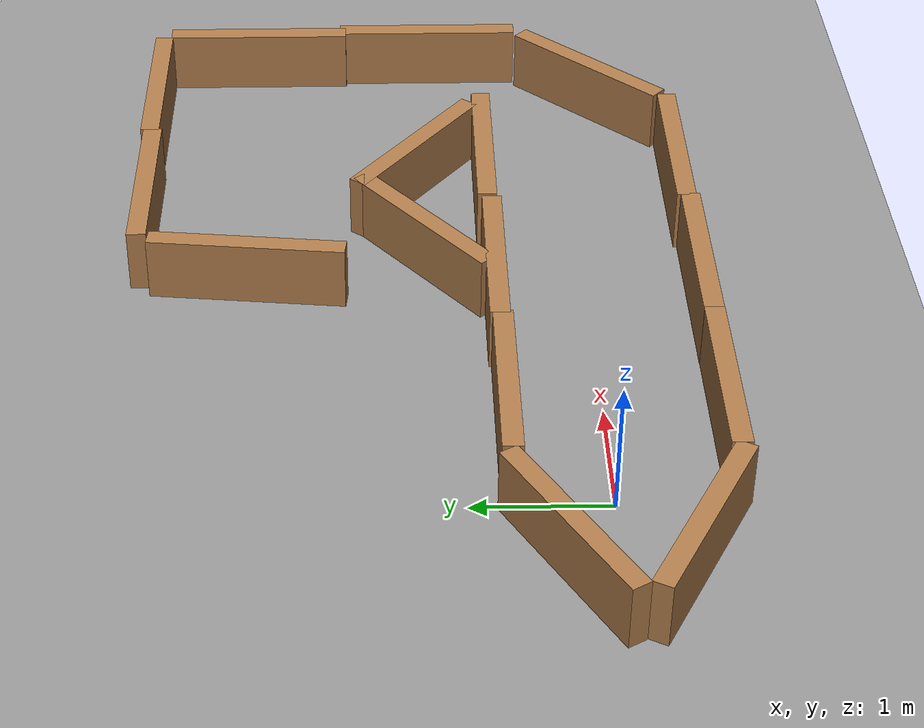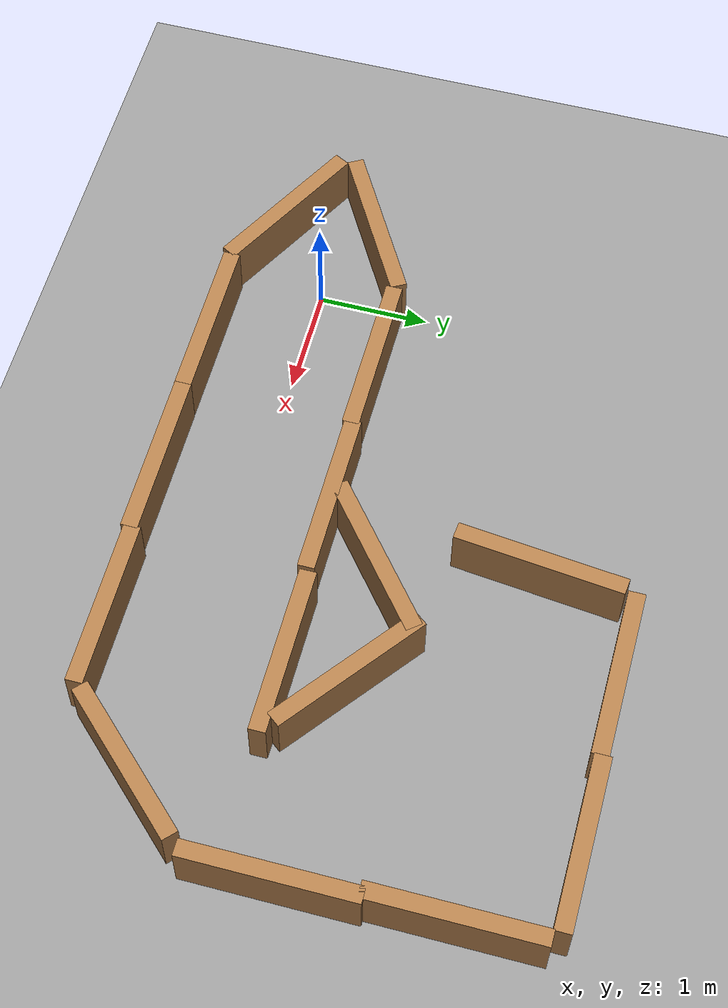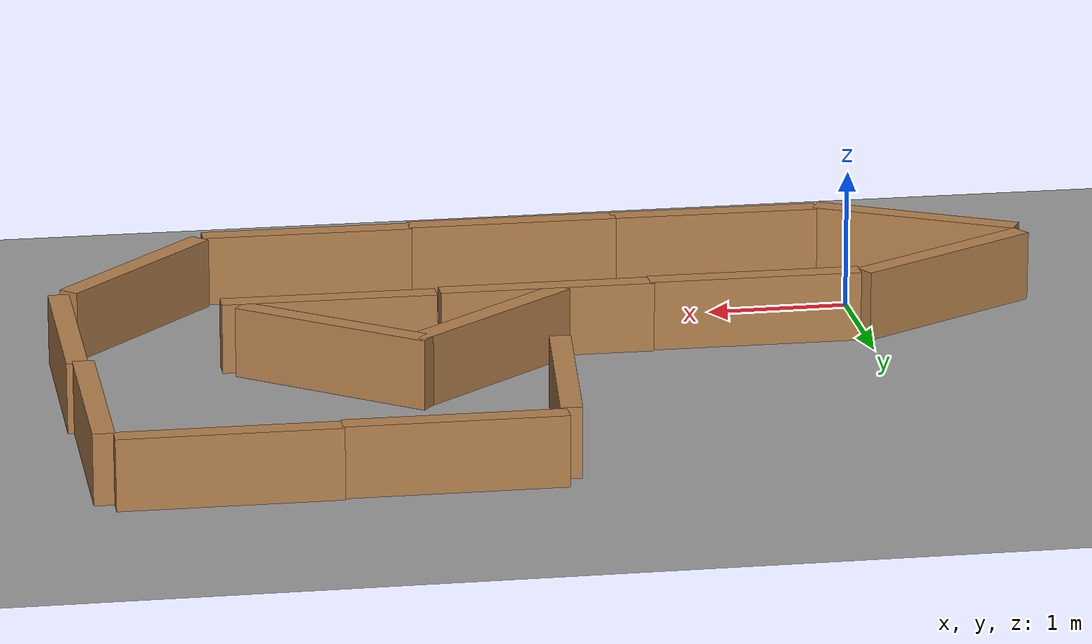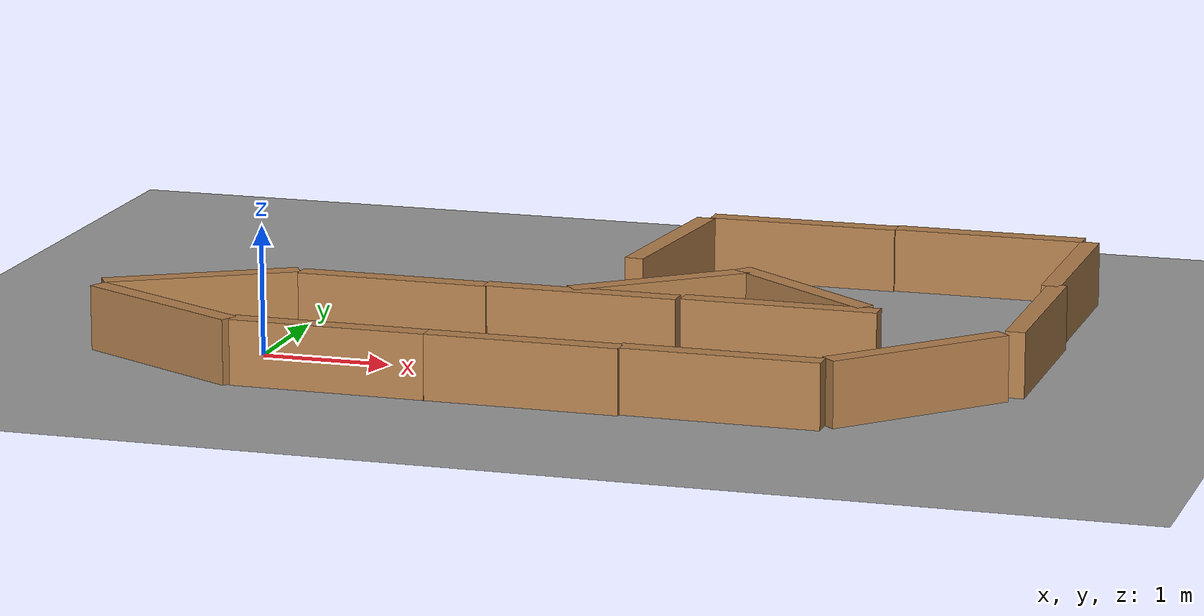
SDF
<sdf version="1.6">
 <world name="default">
  <light name="sun" type="directional">
   <pose>0 0 10 0 -0 0</pose>
   <diffuse>0.8 0.8 0.8 1</diffuse>
   <specular>0.2 0.2 0.2 1</specular>
   <attenuation>
    <range>1000</range>
    <constant>0.9</constant>
    <linear>0.01</linear>
    <quadratic>0.001</quadratic>
   </attenuation>
   <direction>0.5 0.1 -0.9</direction>
  </light>
  <scene><ambient>0.4 0.4 0.4 1</ambient><background>0.7 0.7 0.7 1</background><shadows>1</shadows></scene>
  <physics name="default_physics" default="0" type="ode">
   <max_step_size>0.01</max_step_size>
   <real_time_factor>1</real_time_factor>
   <real_time_update_rate>100</real_time_update_rate>
  </physics>
  <model name="ground_plane_0">
   <static>1</static>
   <link name="link">
    <collision name="collision">
     <geometry><plane><normal>0 0 1</normal><size>100 100</size></plane></geometry>
     <surface><friction><ode><mu>100</mu><mu2>50</mu2></ode></friction></surface>
    </collision>
    <visual name="visual">
     <cast_shadows>0</cast_shadows>
     <geometry><plane><normal>0 0 1</normal><size>100 100</size></plane></geometry>
     <material>
      <script><uri>file://media/materials/scripts/gazebo.material</uri><name>Gazebo/Grey</name></script>
     </material>
    </visual>
    <velocity_decay><linear>0</linear><angular>0</angular></velocity_decay>
   </link>
   <pose>0.497681 0 0 0 -0 0</pose>
  </model>
  <gravity>0 0 -9.8</gravity>
  <magnetic_field>6e-06 2.3e-05 -4.2e-05</magnetic_field>
  <atmosphere type="adiabatic"/>
  <spherical_coordinates>
   <surface_model>EARTH_WGS84</surface_model>
   <latitude_deg>0</latitude_deg>
   <longitude_deg>0</longitude_deg>
   <elevation>0</elevation>
   <heading_deg>0</heading_deg>
  </spherical_coordinates>
  <model name="final_project_zone_final">
   <link name="Wall_4">
    <pose>0.711293 1.64851 0 0 -0 2.64859</pose>
    <inertial>
     <inertia><ixx>0</ixx><ixy>0</ixy><ixz>0</ixz><iyy>0</iyy><iyz>0</iyz><izz>0</izz></inertia>
     <mass>0</mass>
    </inertial>
    <visual name="Wall_4_Visual">
     <pose>0 0 0.25 0 -0 0</pose>
     <geometry><box><size>1.51038 0.15 0.5</size></box></geometry>
     <material>
      <script><uri>file://media/materials/scripts/gazebo.material</uri><name>Gazebo/Wood</name></script>
      <ambient>1 1 1 1</ambient>
      <diffuse>1 1 1 1</diffuse>
      <specular>0.2 0.2 0.2 1</specular>
      <emissive>0 0 0 1</emissive>
      <shader type="pixel"><normal_map>__default__</normal_map></shader>
     </material>
    </visual>
    <collision name="Wall_4_Collision">
     <pose>0 0 0.25 0 -0 0</pose>
     <geometry><box><size>1.51038 0.15 0.5</size></box></geometry>
     <surface>
      <friction>
       <ode><mu>1</mu><mu2>1</mu2><fdir1>0 0 0</fdir1><slip1>0</slip1><slip2>0</slip2></ode>
       <torsional>
        <coefficient>1</coefficient>
        <patch_radius>0</patch_radius>
        <surface_radius>0</surface_radius>
        <use_patch_radius>1</use_patch_radius>
        <ode><slip>0</slip></ode>
       </torsional>
      </friction>
      <bounce><restitution_coefficient>0</restitution_coefficient><threshold>1e+06</threshold></bounce>
      <contact>
       <collide_without_contact>0</collide_without_contact>
       <collide_without_contact_bitmask>1</collide_without_contact_bitmask>
       <collide_bitmask>1</collide_bitmask>
       <ode>
        <soft_cfm>0</soft_cfm>
        <soft_erp>0.2</soft_erp>
        <kp>1e+13</kp>
        <kd>1</kd>
        <max_vel>0.01</max_vel>
        <min_depth>0</min_depth>
       </ode>
       <bullet>
        <split_impulse>1</split_impulse>
        <split_impulse_penetration_threshold>-0.01</split_impulse_penetration_threshold>
        <soft_cfm>0</soft_cfm>
        <soft_erp>0.2</soft_erp>
        <kp>1e+13</kp>
        <kd>1</kd>
       </bullet>
      </contact>
     </surface>
    </collision>
   </link>
   <link name="Wall_4_clone">
    <pose>5.18012 3.43794 0 0 -0 2.48633</pose>
    <inertial>
     <inertia><ixx>0</ixx><ixy>0</ixy><ixz>0</ixz><iyy>0</iyy><iyz>0</iyz><izz>0</izz></inertia>
     <mass>0</mass>
    </inertial>
    <visual name="Wall_4_Visual">
     <pose>0 0 0.25 0 -0 0</pose>
     <geometry><box><size>1.51038 0.15 0.5</size></box></geometry>
     <material>
      <script><uri>file://media/materials/scripts/gazebo.material</uri><name>Gazebo/Wood</name></script>
      <ambient>1 1 1 1</ambient>
      <diffuse>1 1 1 1</diffuse>
      <specular>0.2 0.2 0.2 1</specular>
      <emissive>0 0 0 1</emissive>
      <shader type="pixel"><normal_map>__default__</normal_map></shader>
     </material>
    </visual>
    <collision name="Wall_4_Collision">
     <pose>0 0 0.25 0 -0 0</pose>
     <geometry><box><size>1.51038 0.15 0.5</size></box></geometry>
     <surface>
      <friction>
       <ode><mu>1</mu><mu2>1</mu2><fdir1>0 0 0</fdir1><slip1>0</slip1><slip2>0</slip2></ode>
       <torsional>
        <coefficient>1</coefficient>
        <patch_radius>0</patch_radius>
        <surface_radius>0</surface_radius>
        <use_patch_radius>1</use_patch_radius>
        <ode><slip>0</slip></ode>
       </torsional>
      </friction>
      <bounce><restitution_coefficient>0</restitution_coefficient><threshold>1e+06</threshold></bounce>
      <contact>
       <collide_without_contact>0</collide_without_contact>
       <collide_without_contact_bitmask>1</collide_without_contact_bitmask>
       <collide_bitmask>1</collide_bitmask>
       <ode>
        <soft_cfm>0</soft_cfm>
        <soft_erp>0.2</soft_erp>
        <kp>1e+13</kp>
        <kd>1</kd>
        <max_vel>0.01</max_vel>
        <min_depth>0</min_depth>
       </ode>
       <bullet>
        <split_impulse>1</split_impulse>
        <split_impulse_penetration_threshold>-0.01</split_impulse_penetration_threshold>
        <soft_cfm>0</soft_cfm>
        <soft_erp>0.2</soft_erp>
        <kp>1e+13</kp>
        <kd>1</kd>
       </bullet>
      </contact>
     </surface>
    </collision>
   </link>
   <link name="Wall_4_clone_0">
    <pose>0.690233 2.50756 0 0 0 -2.61959</pose>
    <inertial>
     <inertia><ixx>0</ixx><ixy>0</ixy><ixz>0</ixz><iyy>0</iyy><iyz>0</iyz><izz>0</izz></inertia>
     <mass>0</mass>
    </inertial>
    <visual name="Wall_4_Visual">
     <pose>0 0 0.25 0 -0 0</pose>
     <geometry><box><size>1.51038 0.15 0.5</size></box></geometry>
     <material>
      <script><uri>file://media/materials/scripts/gazebo.material</uri><name>Gazebo/Wood</name></script>
      <ambient>1 1 1 1</ambient>
      <diffuse>1 1 1 1</diffuse>
      <specular>0.2 0.2 0.2 1</specular>
      <emissive>0 0 0 1</emissive>
      <shader type="pixel"><normal_map>__default__</normal_map></shader>
     </material>
    </visual>
    <collision name="Wall_4_Collision">
     <pose>0 0 0.25 0 -0 0</pose>
     <geometry><box><size>1.51038 0.15 0.5</size></box></geometry>
     <surface>
      <friction>
       <ode><mu>1</mu><mu2>1</mu2><fdir1>0 0 0</fdir1><slip1>0</slip1><slip2>0</slip2></ode>
       <torsional>
        <coefficient>1</coefficient>
        <patch_radius>0</patch_radius>
        <surface_radius>0</surface_radius>
        <use_patch_radius>1</use_patch_radius>
        <ode><slip>0</slip></ode>
       </torsional>
      </friction>
      <bounce><restitution_coefficient>0</restitution_coefficient><threshold>1e+06</threshold></bounce>
      <contact>
       <collide_without_contact>0</collide_without_contact>
       <collide_without_contact_bitmask>1</collide_without_contact_bitmask>
       <collide_bitmask>1</collide_bitmask>
       <ode>
        <soft_cfm>0</soft_cfm>
        <soft_erp>0.2</soft_erp>
        <kp>1e+13</kp>
        <kd>1</kd>
        <max_vel>0.01</max_vel>
        <min_depth>0</min_depth>
       </ode>
       <bullet>
        <split_impulse>1</split_impulse>
        <split_impulse_penetration_threshold>-0.01</split_impulse_penetration_threshold>
        <soft_cfm>0</soft_cfm>
        <soft_erp>0.2</soft_erp>
        <kp>1e+13</kp>
        <kd>1</kd>
       </bullet>
      </contact>
     </surface>
    </collision>
   </link>
   <link name="Wall_4_clone_0_clone">
    <pose>6.41204 1.93908 0 0 0 -2.33156</pose>
    <inertial>
     <inertia><ixx>0</ixx><ixy>0</ixy><ixz>0</ixz><iyy>0</iyy><iyz>0</iyz><izz>0</izz></inertia>
     <mass>0</mass>
    </inertial>
    <visual name="Wall_4_Visual">
     <pose>0 0 0.25 0 -0 0</pose>
     <geometry><box><size>1.51038 0.15 0.5</size></box></geometry>
     <material>
      <script><uri>file://media/materials/scripts/gazebo.material</uri><name>Gazebo/Wood</name></script>
      <ambient>1 1 1 1</ambient>
      <diffuse>1 1 1 1</diffuse>
      <specular>0.2 0.2 0.2 1</specular>
      <emissive>0 0 0 1</emissive>
      <shader type="pixel"><normal_map>__default__</normal_map></shader>
     </material>
    </visual>
    <collision name="Wall_4_Collision">
     <pose>0 0 0.25 0 -0 0</pose>
     <geometry><box><size>1.51038 0.15 0.5</size></box></geometry>
     <surface>
      <friction>
       <ode><mu>1</mu><mu2>1</mu2><fdir1>0 0 0</fdir1><slip1>0</slip1><slip2>0</slip2></ode>
       <torsional>
        <coefficient>1</coefficient>
        <patch_radius>0</patch_radius>
        <surface_radius>0</surface_radius>
        <use_patch_radius>1</use_patch_radius>
        <ode><slip>0</slip></ode>
       </torsional>
      </friction>
      <bounce><restitution_coefficient>0</restitution_coefficient><threshold>1e+06</threshold></bounce>
      <contact>
       <collide_without_contact>0</collide_without_contact>
       <collide_without_contact_bitmask>1</collide_without_contact_bitmask>
       <collide_bitmask>1</collide_bitmask>
       <ode>
        <soft_cfm>0</soft_cfm>
        <soft_erp>0.2</soft_erp>
        <kp>1e+13</kp>
        <kd>1</kd>
        <max_vel>0.01</max_vel>
        <min_depth>0</min_depth>
       </ode>
       <bullet>
        <split_impulse>1</split_impulse>
        <split_impulse_penetration_threshold>-0.01</split_impulse_penetration_threshold>
        <soft_cfm>0</soft_cfm>
        <soft_erp>0.2</soft_erp>
        <kp>1e+13</kp>
        <kd>1</kd>
       </bullet>
      </contact>
     </surface>
    </collision>
   </link>
   <link name="Wall_4_clone_0_clone_0">
    <pose>4.09436 3.39143 0 0 0 -2.45903</pose>
    <inertial>
     <inertia><ixx>0</ixx><ixy>0</ixy><ixz>0</ixz><iyy>0</iyy><iyz>0</iyz><izz>0</izz></inertia>
     <mass>0</mass>
    </inertial>
    <visual name="Wall_4_Visual">
     <pose>0 0 0.25 0 -0 0</pose>
     <geometry><box><size>1.51038 0.15 0.5</size></box></geometry>
     <material>
      <script><uri>file://media/materials/scripts/gazebo.material</uri><name>Gazebo/Wood</name></script>
      <ambient>1 1 1 1</ambient>
      <diffuse>1 1 1 1</diffuse>
      <specular>0.2 0.2 0.2 1</specular>
      <emissive>0 0 0 1</emissive>
      <shader type="pixel"><normal_map>__default__</normal_map></shader>
     </material>
    </visual>
    <collision name="Wall_4_Collision">
     <pose>0 0 0.25 0 -0 0</pose>
     <geometry><box><size>1.51038 0.15 0.5</size></box></geometry>
     <surface>
      <friction>
       <ode><mu>1</mu><mu2>1</mu2><fdir1>0 0 0</fdir1><slip1>0</slip1><slip2>0</slip2></ode>
       <torsional>
        <coefficient>1</coefficient>
        <patch_radius>0</patch_radius>
        <surface_radius>0</surface_radius>
        <use_patch_radius>1</use_patch_radius>
        <ode><slip>0</slip></ode>
       </torsional>
      </friction>
      <bounce><restitution_coefficient>0</restitution_coefficient><threshold>1e+06</threshold></bounce>
      <contact>
       <collide_without_contact>0</collide_without_contact>
       <collide_without_contact_bitmask>1</collide_without_contact_bitmask>
       <collide_bitmask>1</collide_bitmask>
       <ode>
        <soft_cfm>0</soft_cfm>
        <soft_erp>0.2</soft_erp>
        <kp>1e+13</kp>
        <kd>1</kd>
        <max_vel>0.01</max_vel>
        <min_depth>0</min_depth>
       </ode>
       <bullet>
        <split_impulse>1</split_impulse>
        <split_impulse_penetration_threshold>-0.01</split_impulse_penetration_threshold>
        <soft_cfm>0</soft_cfm>
        <soft_erp>0.2</soft_erp>
        <kp>1e+13</kp>
        <kd>1</kd>
       </bullet>
      </contact>
     </surface>
    </collision>
   </link>
   <link name="Wall_4_clone_1">
    <pose>2.14061 1.32017 0 0 0 -0.004193</pose>
    <inertial>
     <inertia><ixx>0</ixx><ixy>0</ixy><ixz>0</ixz><iyy>0</iyy><iyz>0</iyz><izz>0</izz></inertia>
     <mass>0</mass>
    </inertial>
    <visual name="Wall_4_Visual">
     <pose>0 0 0.25 0 -0 0</pose>
     <geometry><box><size>1.51038 0.15 0.5</size></box></geometry>
     <material>
      <script><uri>file://media/materials/scripts/gazebo.material</uri><name>Gazebo/Wood</name></script>
      <ambient>1 1 1 1</ambient>
      <diffuse>1 1 1 1</diffuse>
      <specular>0.2 0.2 0.2 1</specular>
      <emissive>0 0 0 1</emissive>
      <shader type="pixel"><normal_map>__default__</normal_map></shader>
     </material>
    </visual>
    <collision name="Wall_4_Collision">
     <pose>0 0 0.25 0 -0 0</pose>
     <geometry><box><size>1.51038 0.15 0.5</size></box></geometry>
     <surface>
      <friction>
       <ode><mu>1</mu><mu2>1</mu2><fdir1>0 0 0</fdir1><slip1>0</slip1><slip2>0</slip2></ode>
       <torsional>
        <coefficient>1</coefficient>
        <patch_radius>0</patch_radius>
        <surface_radius>0</surface_radius>
        <use_patch_radius>1</use_patch_radius>
        <ode><slip>0</slip></ode>
       </torsional>
      </friction>
      <bounce><restitution_coefficient>0</restitution_coefficient><threshold>1e+06</threshold></bounce>
      <contact>
       <collide_without_contact>0</collide_without_contact>
       <collide_without_contact_bitmask>1</collide_without_contact_bitmask>
       <collide_bitmask>1</collide_bitmask>
       <ode>
        <soft_cfm>0</soft_cfm>
        <soft_erp>0.2</soft_erp>
        <kp>1e+13</kp>
        <kd>1</kd>
        <max_vel>0.01</max_vel>
        <min_depth>0</min_depth>
       </ode>
       <bullet>
        <split_impulse>1</split_impulse>
        <split_impulse_penetration_threshold>-0.01</split_impulse_penetration_threshold>
        <soft_cfm>0</soft_cfm>
        <soft_erp>0.2</soft_erp>
        <kp>1e+13</kp>
        <kd>1</kd>
       </bullet>
      </contact>
     </surface>
    </collision>
   </link>
   <link name="Wall_4_clone_1_clone">
    <pose>5.11683 1.33715 0 0 0 -0.004193</pose>
    <inertial>
     <inertia><ixx>0</ixx><ixy>0</ixy><ixz>0</ixz><iyy>0</iyy><iyz>0</iyz><izz>0</izz></inertia>
     <mass>0</mass>
    </inertial>
    <visual name="Wall_4_Visual">
     <pose>0 0 0.25 0 -0 0</pose>
     <geometry><box><size>1.51038 0.15 0.5</size></box></geometry>
     <material>
      <script><uri>file://media/materials/scripts/gazebo.material</uri><name>Gazebo/Wood</name></script>
      <ambient>1 1 1 1</ambient>
      <diffuse>1 1 1 1</diffuse>
      <specular>0.2 0.2 0.2 1</specular>
      <emissive>0 0 0 1</emissive>
      <shader type="pixel"><normal_map>__default__</normal_map></shader>
     </material>
    </visual>
    <collision name="Wall_4_Collision">
     <pose>0 0 0.25 0 -0 0</pose>
     <geometry><box><size>1.51038 0.15 0.5</size></box></geometry>
     <surface>
      <friction>
       <ode><mu>1</mu><mu2>1</mu2><fdir1>0 0 0</fdir1><slip1>0</slip1><slip2>0</slip2></ode>
       <torsional>
        <coefficient>1</coefficient>
        <patch_radius>0</patch_radius>
        <surface_radius>0</surface_radius>
        <use_patch_radius>1</use_patch_radius>
        <ode><slip>0</slip></ode>
       </torsional>
      </friction>
      <bounce><restitution_coefficient>0</restitution_coefficient><threshold>1e+06</threshold></bounce>
      <contact>
       <collide_without_contact>0</collide_without_contact>
       <collide_without_contact_bitmask>1</collide_without_contact_bitmask>
       <collide_bitmask>1</collide_bitmask>
       <ode>
        <soft_cfm>0</soft_cfm>
        <soft_erp>0.2</soft_erp>
        <kp>1e+13</kp>
        <kd>1</kd>
        <max_vel>0.01</max_vel>
        <min_depth>0</min_depth>
       </ode>
       <bullet>
        <split_impulse>1</split_impulse>
        <split_impulse_penetration_threshold>-0.01</split_impulse_penetration_threshold>
        <soft_cfm>0</soft_cfm>
        <soft_erp>0.2</soft_erp>
        <kp>1e+13</kp>
        <kd>1</kd>
       </bullet>
      </contact>
     </surface>
    </collision>
   </link>
   <link name="Wall_4_clone_1_clone_0">
    <pose>3.62102 1.31595 0 0 0 -0.004193</pose>
    <inertial>
     <inertia><ixx>0</ixx><ixy>0</ixy><ixz>0</ixz><iyy>0</iyy><iyz>0</iyz><izz>0</izz></inertia>
     <mass>0</mass>
    </inertial>
    <visual name="Wall_4_Visual">
     <pose>0 0 0.25 0 -0 0</pose>
     <geometry><box><size>1.51038 0.15 0.5</size></box></geometry>
     <material>
      <script><uri>file://media/materials/scripts/gazebo.material</uri><name>Gazebo/Wood</name></script>
      <ambient>1 1 1 1</ambient>
      <diffuse>1 1 1 1</diffuse>
      <specular>0.2 0.2 0.2 1</specular>
      <emissive>0 0 0 1</emissive>
      <shader type="pixel"><normal_map>__default__</normal_map></shader>
     </material>
    </visual>
    <collision name="Wall_4_Collision">
     <pose>0 0 0.25 0 -0 0</pose>
     <geometry><box><size>1.51038 0.15 0.5</size></box></geometry>
     <surface>
      <friction>
       <ode><mu>1</mu><mu2>1</mu2><fdir1>0 0 0</fdir1><slip1>0</slip1><slip2>0</slip2></ode>
       <torsional>
        <coefficient>1</coefficient>
        <patch_radius>0</patch_radius>
        <surface_radius>0</surface_radius>
        <use_patch_radius>1</use_patch_radius>
        <ode><slip>0</slip></ode>
       </torsional>
      </friction>
      <bounce><restitution_coefficient>0</restitution_coefficient><threshold>1e+06</threshold></bounce>
      <contact>
       <collide_without_contact>0</collide_without_contact>
       <collide_without_contact_bitmask>1</collide_without_contact_bitmask>
       <collide_bitmask>1</collide_bitmask>
       <ode>
        <soft_cfm>0</soft_cfm>
        <soft_erp>0.2</soft_erp>
        <kp>1e+13</kp>
        <kd>1</kd>
        <max_vel>0.01</max_vel>
        <min_depth>0</min_depth>
       </ode>
       <bullet>
        <split_impulse>1</split_impulse>
        <split_impulse_penetration_threshold>-0.01</split_impulse_penetration_threshold>
        <soft_cfm>0</soft_cfm>
        <soft_erp>0.2</soft_erp>
        <kp>1e+13</kp>
        <kd>1</kd>
       </bullet>
      </contact>
     </surface>
    </collision>
   </link>
   <link name="Wall_4_clone_1_clone_1">
    <pose>2.12657 2.84824 0 0 0 -0.004193</pose>
    <inertial>
     <inertia><ixx>0</ixx><ixy>0</ixy><ixz>0</ixz><iyy>0</iyy><iyz>0</iyz><izz>0</izz></inertia>
     <mass>0</mass>
    </inertial>
    <visual name="Wall_4_Visual">
     <pose>0 0 0.25 0 -0 0</pose>
     <geometry><box><size>1.51038 0.15 0.5</size></box></geometry>
     <material>
      <script><uri>file://media/materials/scripts/gazebo.material</uri><name>Gazebo/Wood</name></script>
      <ambient>1 1 1 1</ambient>
      <diffuse>1 1 1 1</diffuse>
      <specular>0.2 0.2 0.2 1</specular>
      <emissive>0 0 0 1</emissive>
      <shader type="pixel"><normal_map>__default__</normal_map></shader>
     </material>
    </visual>
    <collision name="Wall_4_Collision">
     <pose>0 0 0.25 0 -0 0</pose>
     <geometry><box><size>1.51038 0.15 0.5</size></box></geometry>
     <surface>
      <friction>
       <ode><mu>1</mu><mu2>1</mu2><fdir1>0 0 0</fdir1><slip1>0</slip1><slip2>0</slip2></ode>
       <torsional>
        <coefficient>1</coefficient>
        <patch_radius>0</patch_radius>
        <surface_radius>0</surface_radius>
        <use_patch_radius>1</use_patch_radius>
        <ode><slip>0</slip></ode>
       </torsional>
      </friction>
      <bounce><restitution_coefficient>0</restitution_coefficient><threshold>1e+06</threshold></bounce>
      <contact>
       <collide_without_contact>0</collide_without_contact>
       <collide_without_contact_bitmask>1</collide_without_contact_bitmask>
       <collide_bitmask>1</collide_bitmask>
       <ode>
        <soft_cfm>0</soft_cfm>
        <soft_erp>0.2</soft_erp>
        <kp>1e+13</kp>
        <kd>1</kd>
        <max_vel>0.01</max_vel>
        <min_depth>0</min_depth>
       </ode>
       <bullet>
        <split_impulse>1</split_impulse>
        <split_impulse_penetration_threshold>-0.01</split_impulse_penetration_threshold>
        <soft_cfm>0</soft_cfm>
        <soft_erp>0.2</soft_erp>
        <kp>1e+13</kp>
        <kd>1</kd>
       </bullet>
      </contact>
     </surface>
    </collision>
   </link>
   <link name="Wall_4_clone_1_clone_2">
    <pose>5.15165 2.88569 0 0 0 -0.004193</pose>
    <inertial>
     <inertia><ixx>0</ixx><ixy>0</ixy><ixz>0</ixz><iyy>0</iyy><iyz>0</iyz><izz>0</izz></inertia>
     <mass>0</mass>
    </inertial>
    <visual name="Wall_4_Visual">
     <pose>0 0 0.25 0 -0 0</pose>
     <geometry><box><size>1.51038 0.15 0.5</size></box></geometry>
     <material>
      <script><uri>file://media/materials/scripts/gazebo.material</uri><name>Gazebo/Wood</name></script>
      <ambient>1 1 1 1</ambient>
      <diffuse>1 1 1 1</diffuse>
      <specular>0.2 0.2 0.2 1</specular>
      <emissive>0 0 0 1</emissive>
      <shader type="pixel"><normal_map>__default__</normal_map></shader>
     </material>
    </visual>
    <collision name="Wall_4_Collision">
     <pose>0 0 0.25 0 -0 0</pose>
     <geometry><box><size>1.51038 0.15 0.5</size></box></geometry>
     <surface>
      <friction>
       <ode><mu>1</mu><mu2>1</mu2><fdir1>0 0 0</fdir1><slip1>0</slip1><slip2>0</slip2></ode>
       <torsional>
        <coefficient>1</coefficient>
        <patch_radius>0</patch_radius>
        <surface_radius>0</surface_radius>
        <use_patch_radius>1</use_patch_radius>
        <ode><slip>0</slip></ode>
       </torsional>
      </friction>
      <bounce><restitution_coefficient>0</restitution_coefficient><threshold>1e+06</threshold></bounce>
      <contact>
       <collide_without_contact>0</collide_without_contact>
       <collide_without_contact_bitmask>1</collide_without_contact_bitmask>
       <collide_bitmask>1</collide_bitmask>
       <ode>
        <soft_cfm>0</soft_cfm>
        <soft_erp>0.2</soft_erp>
        <kp>1e+13</kp>
        <kd>1</kd>
        <max_vel>0.01</max_vel>
        <min_depth>0</min_depth>
       </ode>
       <bullet>
        <split_impulse>1</split_impulse>
        <split_impulse_penetration_threshold>-0.01</split_impulse_penetration_threshold>
        <soft_cfm>0</soft_cfm>
        <soft_erp>0.2</soft_erp>
        <kp>1e+13</kp>
        <kd>1</kd>
       </bullet>
      </contact>
     </surface>
    </collision>
   </link>
   <link name="Wall_4_clone_1_clone_3">
    <pose>3.61124 2.86106 0 0 0 -0.004193</pose>
    <inertial>
     <inertia><ixx>0</ixx><ixy>0</ixy><ixz>0</ixz><iyy>0</iyy><iyz>0</iyz><izz>0</izz></inertia>
     <mass>0</mass>
    </inertial>
    <visual name="Wall_4_Visual">
     <pose>0 0 0.25 0 -0 0</pose>
     <geometry><box><size>1.51038 0.15 0.5</size></box></geometry>
     <material>
      <script><uri>file://media/materials/scripts/gazebo.material</uri><name>Gazebo/Wood</name></script>
      <ambient>1 1 1 1</ambient>
      <diffuse>1 1 1 1</diffuse>
      <specular>0.2 0.2 0.2 1</specular>
      <emissive>0 0 0 1</emissive>
      <shader type="pixel"><normal_map>__default__</normal_map></shader>
     </material>
    </visual>
    <collision name="Wall_4_Collision">
     <pose>0 0 0.25 0 -0 0</pose>
     <geometry><box><size>1.51038 0.15 0.5</size></box></geometry>
     <surface>
      <friction>
       <ode><mu>1</mu><mu2>1</mu2><fdir1>0 0 0</fdir1><slip1>0</slip1><slip2>0</slip2></ode>
       <torsional>
        <coefficient>1</coefficient>
        <patch_radius>0</patch_radius>
        <surface_radius>0</surface_radius>
        <use_patch_radius>1</use_patch_radius>
        <ode><slip>0</slip></ode>
       </torsional>
      </friction>
      <bounce><restitution_coefficient>0</restitution_coefficient><threshold>1e+06</threshold></bounce>
      <contact>
       <collide_without_contact>0</collide_without_contact>
       <collide_without_contact_bitmask>1</collide_without_contact_bitmask>
       <collide_bitmask>1</collide_bitmask>
       <ode>
        <soft_cfm>0</soft_cfm>
        <soft_erp>0.2</soft_erp>
        <kp>1e+13</kp>
        <kd>1</kd>
        <max_vel>0.01</max_vel>
        <min_depth>0</min_depth>
       </ode>
       <bullet>
        <split_impulse>1</split_impulse>
        <split_impulse_penetration_threshold>-0.01</split_impulse_penetration_threshold>
        <soft_cfm>0</soft_cfm>
        <soft_erp>0.2</soft_erp>
        <kp>1e+13</kp>
        <kd>1</kd>
       </bullet>
      </contact>
     </surface>
    </collision>
   </link>
   <link name="Wall_4_clone_1_clone_3_clone">
    <pose>6.14633 5.58513 0 0 0 -0.004193</pose>
    <inertial>
     <inertia><ixx>0</ixx><ixy>0</ixy><ixz>0</ixz><iyy>0</iyy><iyz>0</iyz><izz>0</izz></inertia>
     <mass>0</mass>
    </inertial>
    <visual name="Wall_4_Visual">
     <pose>0 0 0.25 0 -0 0</pose>
     <geometry><box><size>1.51038 0.15 0.5</size></box></geometry>
     <material>
      <script><uri>file://media/materials/scripts/gazebo.material</uri><name>Gazebo/Wood</name></script>
      <ambient>1 1 1 1</ambient>
      <diffuse>1 1 1 1</diffuse>
      <specular>0.2 0.2 0.2 1</specular>
      <emissive>0 0 0 1</emissive>
      <shader type="pixel"><normal_map>__default__</normal_map></shader>
     </material>
    </visual>
    <collision name="Wall_4_Collision">
     <pose>0 0 0.25 0 -0 0</pose>
     <geometry><box><size>1.51038 0.15 0.5</size></box></geometry>
     <surface>
      <friction>
       <ode><mu>1</mu><mu2>1</mu2><fdir1>0 0 0</fdir1><slip1>0</slip1><slip2>0</slip2></ode>
       <torsional>
        <coefficient>1</coefficient>
        <patch_radius>0</patch_radius>
        <surface_radius>0</surface_radius>
        <use_patch_radius>1</use_patch_radius>
        <ode><slip>0</slip></ode>
       </torsional>
      </friction>
      <bounce><restitution_coefficient>0</restitution_coefficient><threshold>1e+06</threshold></bounce>
      <contact>
       <collide_without_contact>0</collide_without_contact>
       <collide_without_contact_bitmask>1</collide_without_contact_bitmask>
       <collide_bitmask>1</collide_bitmask>
       <ode>
        <soft_cfm>0</soft_cfm>
        <soft_erp>0.2</soft_erp>
        <kp>1e+13</kp>
        <kd>1</kd>
        <max_vel>0.01</max_vel>
        <min_depth>0</min_depth>
       </ode>
       <bullet>
        <split_impulse>1</split_impulse>
        <split_impulse_penetration_threshold>-0.01</split_impulse_penetration_threshold>
        <soft_cfm>0</soft_cfm>
        <soft_erp>0.2</soft_erp>
        <kp>1e+13</kp>
        <kd>1</kd>
       </bullet>
      </contact>
     </surface>
    </collision>
   </link>
   <link name="Wall_4_clone_1_clone_3_clone_0">
    <pose>4.64508 5.5676 0 0 0 -0.004193</pose>
    <inertial>
     <inertia><ixx>0</ixx><ixy>0</ixy><ixz>0</ixz><iyy>0</iyy><iyz>0</iyz><izz>0</izz></inertia>
     <mass>0</mass>
    </inertial>
    <visual name="Wall_4_Visual">
     <pose>0 0 0.25 0 -0 0</pose>
     <geometry><box><size>1.51038 0.15 0.5</size></box></geometry>
     <material>
      <script><uri>file://media/materials/scripts/gazebo.material</uri><name>Gazebo/Wood</name></script>
      <ambient>1 1 1 1</ambient>
      <diffuse>1 1 1 1</diffuse>
      <specular>0.2 0.2 0.2 1</specular>
      <emissive>0 0 0 1</emissive>
      <shader type="pixel"><normal_map>__default__</normal_map></shader>
     </material>
    </visual>
    <collision name="Wall_4_Collision">
     <pose>0 0 0.25 0 -0 0</pose>
     <geometry><box><size>1.51038 0.15 0.5</size></box></geometry>
     <surface>
      <friction>
       <ode><mu>1</mu><mu2>1</mu2><fdir1>0 0 0</fdir1><slip1>0</slip1><slip2>0</slip2></ode>
       <torsional>
        <coefficient>1</coefficient>
        <patch_radius>0</patch_radius>
        <surface_radius>0</surface_radius>
        <use_patch_radius>1</use_patch_radius>
        <ode><slip>0</slip></ode>
       </torsional>
      </friction>
      <bounce><restitution_coefficient>0</restitution_coefficient><threshold>1e+06</threshold></bounce>
      <contact>
       <collide_without_contact>0</collide_without_contact>
       <collide_without_contact_bitmask>1</collide_without_contact_bitmask>
       <collide_bitmask>1</collide_bitmask>
       <ode>
        <soft_cfm>0</soft_cfm>
        <soft_erp>0.2</soft_erp>
        <kp>1e+13</kp>
        <kd>1</kd>
        <max_vel>0.01</max_vel>
        <min_depth>0</min_depth>
       </ode>
       <bullet>
        <split_impulse>1</split_impulse>
        <split_impulse_penetration_threshold>-0.01</split_impulse_penetration_threshold>
        <soft_cfm>0</soft_cfm>
        <soft_erp>0.2</soft_erp>
        <kp>1e+13</kp>
        <kd>1</kd>
       </bullet>
      </contact>
     </surface>
    </collision>
   </link>
   <link name="Wall_4_clone_2_clone">
    <pose>6.96474 4.76618 0 0 -0 1.5708</pose>
    <inertial>
     <inertia><ixx>0</ixx><ixy>0</ixy><ixz>0</ixz><iyy>0</iyy><iyz>0</iyz><izz>0</izz></inertia>
     <mass>0</mass>
    </inertial>
    <visual name="Wall_4_Visual">
     <pose>0 0 0.25 0 -0 0</pose>
     <geometry><box><size>1.51038 0.15 0.5</size></box></geometry>
     <material>
      <script><uri>file://media/materials/scripts/gazebo.material</uri><name>Gazebo/Wood</name></script>
      <ambient>1 1 1 1</ambient>
      <diffuse>1 1 1 1</diffuse>
      <specular>0.2 0.2 0.2 1</specular>
      <emissive>0 0 0 1</emissive>
      <shader type="pixel"><normal_map>__default__</normal_map></shader>
     </material>
    </visual>
    <collision name="Wall_4_Collision">
     <pose>0 0 0.25 0 -0 0</pose>
     <geometry><box><size>1.51038 0.15 0.5</size></box></geometry>
     <surface>
      <friction>
       <ode><mu>1</mu><mu2>1</mu2><fdir1>0 0 0</fdir1><slip1>0</slip1><slip2>0</slip2></ode>
       <torsional>
        <coefficient>1</coefficient>
        <patch_radius>0</patch_radius>
        <surface_radius>0</surface_radius>
        <use_patch_radius>1</use_patch_radius>
        <ode><slip>0</slip></ode>
       </torsional>
      </friction>
      <bounce><restitution_coefficient>0</restitution_coefficient><threshold>1e+06</threshold></bounce>
      <contact>
       <collide_without_contact>0</collide_without_contact>
       <collide_without_contact_bitmask>1</collide_without_contact_bitmask>
       <collide_bitmask>1</collide_bitmask>
       <ode>
        <soft_cfm>0</soft_cfm>
        <soft_erp>0.2</soft_erp>
        <kp>1e+13</kp>
        <kd>1</kd>
        <max_vel>0.01</max_vel>
        <min_depth>0</min_depth>
       </ode>
       <bullet>
        <split_impulse>1</split_impulse>
        <split_impulse_penetration_threshold>-0.01</split_impulse_penetration_threshold>
        <soft_cfm>0</soft_cfm>
        <soft_erp>0.2</soft_erp>
        <kp>1e+13</kp>
        <kd>1</kd>
       </bullet>
      </contact>
     </surface>
    </collision>
   </link>
   <link name="Wall_4_clone_2_clone_0">
    <pose>7.00784 3.30235 0 0 -0 1.5708</pose>
    <inertial>
     <inertia><ixx>0</ixx><ixy>0</ixy><ixz>0</ixz><iyy>0</iyy><iyz>0</iyz><izz>0</izz></inertia>
     <mass>0</mass>
    </inertial>
    <visual name="Wall_4_Visual">
     <pose>0 0 0.25 0 -0 0</pose>
     <geometry><box><size>1.51038 0.15 0.5</size></box></geometry>
     <material>
      <script><uri>file://media/materials/scripts/gazebo.material</uri><name>Gazebo/Wood</name></script>
      <ambient>1 1 1 1</ambient>
      <diffuse>1 1 1 1</diffuse>
      <specular>0.2 0.2 0.2 1</specular>
      <emissive>0 0 0 1</emissive>
      <shader type="pixel"><normal_map>__default__</normal_map></shader>
     </material>
    </visual>
    <collision name="Wall_4_Collision">
     <pose>0 0 0.25 0 -0 0</pose>
     <geometry><box><size>1.51038 0.15 0.5</size></box></geometry>
     <surface>
      <friction>
       <ode><mu>1</mu><mu2>1</mu2><fdir1>0 0 0</fdir1><slip1>0</slip1><slip2>0</slip2></ode>
       <torsional>
        <coefficient>1</coefficient>
        <patch_radius>0</patch_radius>
        <surface_radius>0</surface_radius>
        <use_patch_radius>1</use_patch_radius>
        <ode><slip>0</slip></ode>
       </torsional>
      </friction>
      <bounce><restitution_coefficient>0</restitution_coefficient><threshold>1e+06</threshold></bounce>
      <contact>
       <collide_without_contact>0</collide_without_contact>
       <collide_without_contact_bitmask>1</collide_without_contact_bitmask>
       <collide_bitmask>1</collide_bitmask>
       <ode>
        <soft_cfm>0</soft_cfm>
        <soft_erp>0.2</soft_erp>
        <kp>1e+13</kp>
        <kd>1</kd>
        <max_vel>0.01</max_vel>
        <min_depth>0</min_depth>
       </ode>
       <bullet>
        <split_impulse>1</split_impulse>
        <split_impulse_penetration_threshold>-0.01</split_impulse_penetration_threshold>
        <soft_cfm>0</soft_cfm>
        <soft_erp>0.2</soft_erp>
        <kp>1e+13</kp>
        <kd>1</kd>
       </bullet>
      </contact>
     </surface>
    </collision>
   </link>
   <link name="Wall_4_clone_2_clone_2">
    <pose>3.77611 4.73244 0 0 -0 1.46273</pose>
    <inertial>
     <inertia><ixx>0</ixx><ixy>0</ixy><ixz>0</ixz><iyy>0</iyy><iyz>0</iyz><izz>0</izz></inertia>
     <mass>0</mass>
    </inertial>
    <visual name="Wall_4_Visual">
     <pose>0 0 0.25 0 -0 0</pose>
     <geometry><box><size>1.51038 0.15 0.5</size></box></geometry>
     <material>
      <script><uri>file://media/materials/scripts/gazebo.material</uri><name>Gazebo/Wood</name></script>
      <ambient>1 1 1 1</ambient>
      <diffuse>1 1 1 1</diffuse>
      <specular>0.2 0.2 0.2 1</specular>
      <emissive>0 0 0 1</emissive>
      <shader type="pixel"><normal_map>__default__</normal_map></shader>
     </material>
    </visual>
    <collision name="Wall_4_Collision">
     <pose>0 0 0.25 0 -0 0</pose>
     <geometry><box><size>1.51038 0.15 0.5</size></box></geometry>
     <surface>
      <friction>
       <ode><mu>1</mu><mu2>1</mu2><fdir1>0 0 0</fdir1><slip1>0</slip1><slip2>0</slip2></ode>
       <torsional>
        <coefficient>1</coefficient>
        <patch_radius>0</patch_radius>
        <surface_radius>0</surface_radius>
        <use_patch_radius>1</use_patch_radius>
        <ode><slip>0</slip></ode>
       </torsional>
      </friction>
      <bounce><restitution_coefficient>0</restitution_coefficient><threshold>1e+06</threshold></bounce>
      <contact>
       <collide_without_contact>0</collide_without_contact>
       <collide_without_contact_bitmask>1</collide_without_contact_bitmask>
       <collide_bitmask>1</collide_bitmask>
       <ode>
        <soft_cfm>0</soft_cfm>
        <soft_erp>0.2</soft_erp>
        <kp>1e+13</kp>
        <kd>1</kd>
        <max_vel>0.01</max_vel>
        <min_depth>0</min_depth>
       </ode>
       <bullet>
        <split_impulse>1</split_impulse>
        <split_impulse_penetration_threshold>-0.01</split_impulse_penetration_threshold>
        <soft_cfm>0</soft_cfm>
        <soft_erp>0.2</soft_erp>
        <kp>1e+13</kp>
        <kd>1</kd>
       </bullet>
      </contact>
     </surface>
    </collision>
   </link>
   <static>1</static>
   <pose>-1.32087 -2.14784 0 0 -0 0</pose>
  </model>
 </world>
</sdf>
